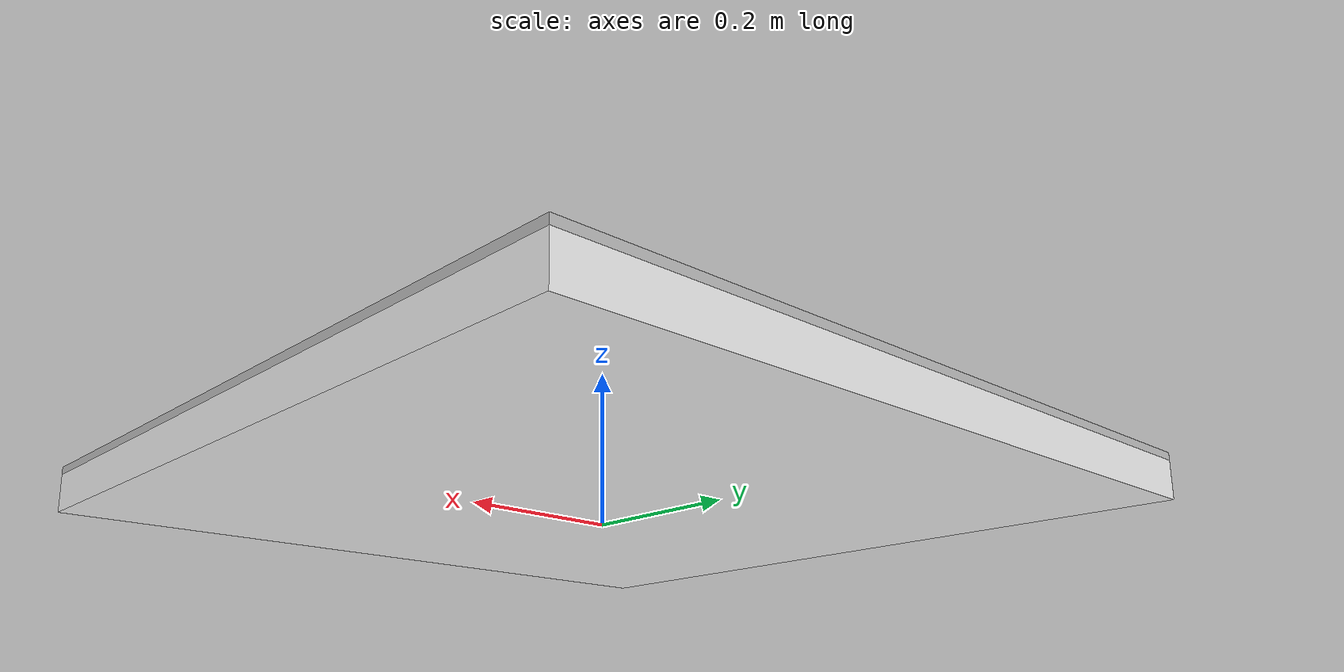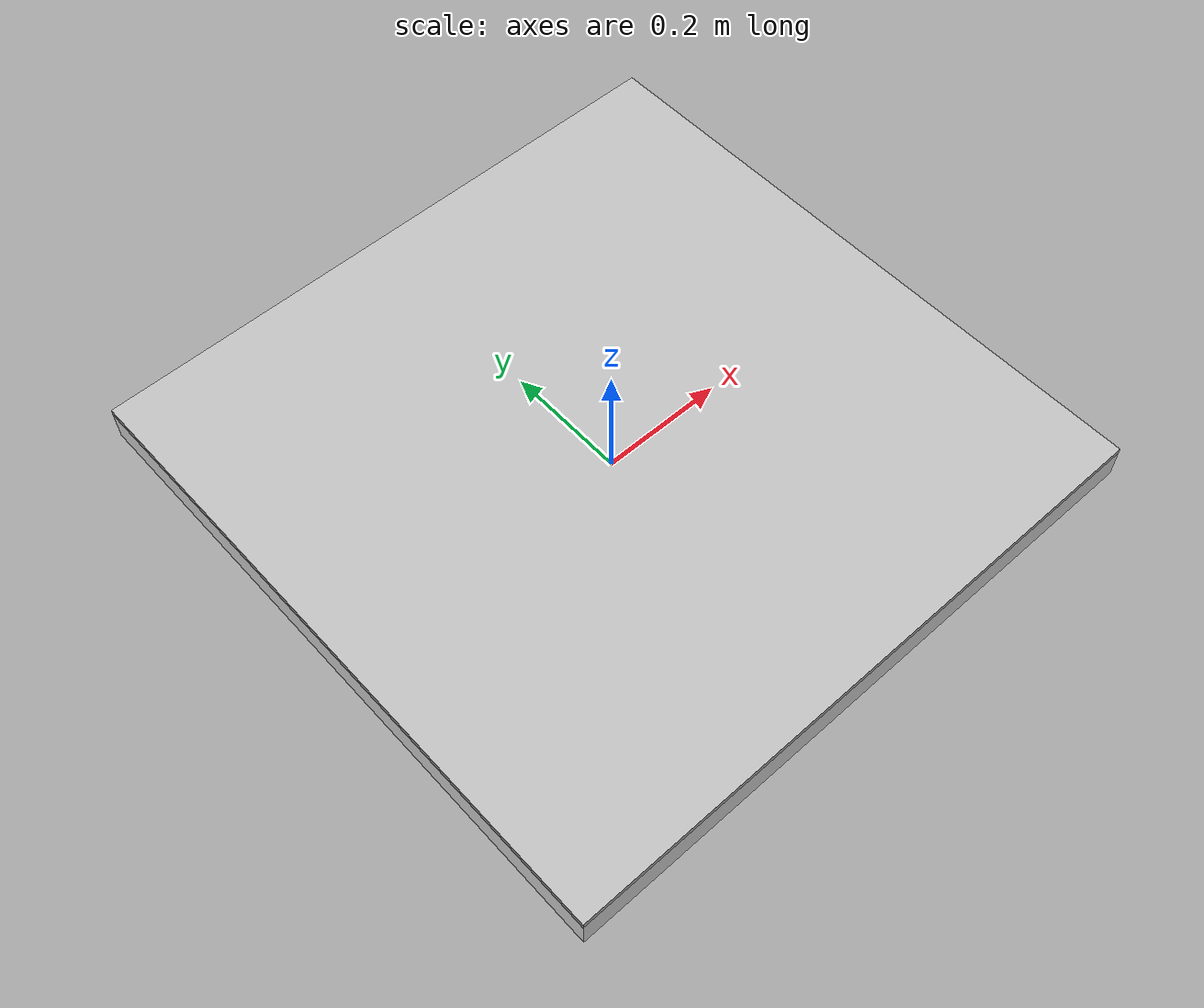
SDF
<?xml version="1.0" ?>
<sdf version="1.5">
  <model name="april_tag_5">
    <pose>0.0 0.0 0.05  0 0 0</pose>
    <static>false</static>
    <link name="link">
      <collision name="base_collision">
        <geometry>
          <box>
            <size>1 1 0.05</size>
          </box>
        </geometry>
      </collision>
      <visual name="base_visual">
        <geometry>
          <box>
            <size>1 1 0.05</size>
          </box>
        </geometry>
        <material>
          <script>
            <name>Gazebo/White</name>
            <uri>file://media/materials/scripts/gazebo.material</uri>
          </script>
        </material>
      </visual>
      <visual name="pad_visual">
      	<pose>0 0 0.03 0 0 0</pose>
        <geometry>
          <box>
            <size>1 1 0.01</size>
          </box>
        </geometry>
        <material>
          <script>
          	<uri>model://at_5/materials/scripts</uri>
               <uri>model://at_5/materials/textures</uri>
          	<name>at5Texture</name>
          </script>
        </material>
      </visual>

    </link>
  </model>
</sdf>
